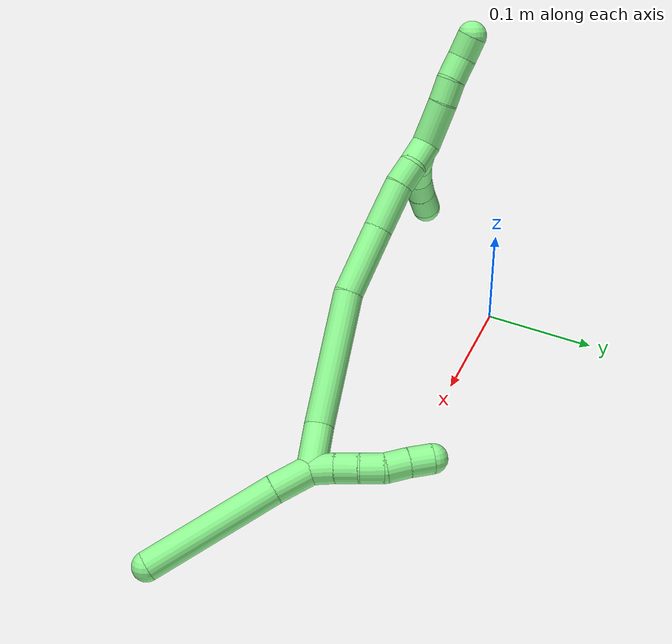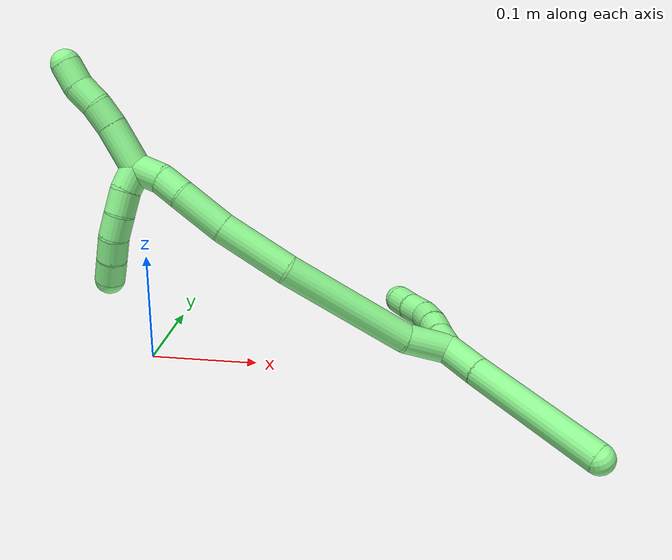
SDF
<sdf version="1.7">
 <world name="default">
  <model name="13">
   <static>0</static>
   <link name="13">
    <collision name="collision-cylinder-e_1_2_8">
     <pose>0.015057 -0.00344 -0.00684 2.67557 1.10037 2.40323</pose>
     <geometry><cylinder><radius>0.0125</radius><length>0.033785</length></cylinder></geometry>
     <surface>
      <friction><ode><mu>1.16</mu><mu2>1.16</mu2><slip1>0</slip1><slip2>0</slip2></ode></friction>
      <contact><ode><kp>1e+06</kp><kd>1</kd><max_vel>0</max_vel><min_depth>0.001</min_depth></ode></contact>
     </surface>
    </collision>
    <visual name="visual-cylinder-e_1_2_8">
     <pose>0.015057 -0.00344 -0.00684 2.67557 1.10037 2.40323</pose>
     <geometry><cylinder><radius>0.0125</radius><length>0.033785</length></cylinder></geometry>
     <material><ambient>0.564706 0.984314 0.572549 1</ambient></material>
    </visual>
    <collision name="collision-cylinder-e_2_8_6">
     <pose>0.08163 -0.015818 -0.039033 2.80267 1.08984 2.59134</pose>
     <geometry><cylinder><radius>0.0125</radius><length>0.116215</length></cylinder></geometry>
     <surface>
      <friction><ode><mu>1.16</mu><mu2>1.16</mu2><slip1>0</slip1><slip2>0</slip2></ode></friction>
      <contact><ode><kp>1e+06</kp><kd>1</kd><max_vel>0</max_vel><min_depth>0.001</min_depth></ode></contact>
     </surface>
    </collision>
    <visual name="visual-cylinder-e_2_8_6">
     <pose>0.08163 -0.015818 -0.039033 2.80267 1.08984 2.59134</pose>
     <geometry><cylinder><radius>0.0125</radius><length>0.116215</length></cylinder></geometry>
     <material><ambient>0.564706 0.984314 0.572549 1</ambient></material>
    </visual>
    <collision name="collision-cylinder-e_1_2_9">
     <pose>-0.008192 0.005632 0.001079 -1.38148 -0.960099 0.812834</pose>
     <geometry><cylinder><radius>0.0125</radius><length>0.02</length></cylinder></geometry>
     <surface>
      <friction><ode><mu>1.16</mu><mu2>1.16</mu2><slip1>0</slip1><slip2>0</slip2></ode></friction>
      <contact><ode><kp>1e+06</kp><kd>1</kd><max_vel>0</max_vel><min_depth>0.001</min_depth></ode></contact>
     </surface>
    </collision>
    <visual name="visual-cylinder-e_1_2_9">
     <pose>-0.008192 0.005632 0.001079 -1.38148 -0.960099 0.812834</pose>
     <geometry><cylinder><radius>0.0125</radius><length>0.02</length></cylinder></geometry>
     <material><ambient>0.564706 0.984314 0.572549 1</ambient></material>
    </visual>
    <collision name="collision-cylinder-e_2_9_10">
     <pose>-0.024211 0.017452 0.002837 -1.46152 -0.898796 0.816059</pose>
     <geometry><cylinder><radius>0.0125</radius><length>0.02</length></cylinder></geometry>
     <surface>
      <friction><ode><mu>1.16</mu><mu2>1.16</mu2><slip1>0</slip1><slip2>0</slip2></ode></friction>
      <contact><ode><kp>1e+06</kp><kd>1</kd><max_vel>0</max_vel><min_depth>0.001</min_depth></ode></contact>
     </surface>
    </collision>
    <visual name="visual-cylinder-e_2_9_10">
     <pose>-0.024211 0.017452 0.002837 -1.46152 -0.898796 0.816059</pose>
     <geometry><cylinder><radius>0.0125</radius><length>0.02</length></cylinder></geometry>
     <material><ambient>0.564706 0.984314 0.572549 1</ambient></material>
    </visual>
    <collision name="collision-cylinder-e_3_10_11">
     <pose>-0.040699 0.028633 0.003707 -1.5325 -1.0477 1.01484</pose>
     <geometry><cylinder><radius>0.0125</radius><length>0.02</length></cylinder></geometry>
     <surface>
      <friction><ode><mu>1.16</mu><mu2>1.16</mu2><slip1>0</slip1><slip2>0</slip2></ode></friction>
      <contact><ode><kp>1e+06</kp><kd>1</kd><max_vel>0</max_vel><min_depth>0.001</min_depth></ode></contact>
     </surface>
    </collision>
    <visual name="visual-cylinder-e_3_10_11">
     <pose>-0.040699 0.028633 0.003707 -1.5325 -1.0477 1.01484</pose>
     <geometry><cylinder><radius>0.0125</radius><length>0.02</length></cylinder></geometry>
     <material><ambient>0.564706 0.984314 0.572549 1</ambient></material>
    </visual>
    <collision name="collision-cylinder-e_4_11_12">
     <pose>-0.058937 0.036126 0.005334 -1.04981 -1.27819 0.812782</pose>
     <geometry><cylinder><radius>0.0125</radius><length>0.02</length></cylinder></geometry>
     <surface>
      <friction><ode><mu>1.16</mu><mu2>1.16</mu2><slip1>0</slip1><slip2>0</slip2></ode></friction>
      <contact><ode><kp>1e+06</kp><kd>1</kd><max_vel>0</max_vel><min_depth>0.001</min_depth></ode></contact>
     </surface>
    </collision>
    <visual name="visual-cylinder-e_4_11_12">
     <pose>-0.058937 0.036126 0.005334 -1.04981 -1.27819 0.812782</pose>
     <geometry><cylinder><radius>0.0125</radius><length>0.02</length></cylinder></geometry>
     <material><ambient>0.564706 0.984314 0.572549 1</ambient></material>
    </visual>
    <collision name="collision-cylinder-e_5_12_5">
     <pose>-0.077933 0.041836 0.007742 -1.27659 -1.22895 0.96452</pose>
     <geometry><cylinder><radius>0.0125</radius><length>0.02</length></cylinder></geometry>
     <surface>
      <friction><ode><mu>1.16</mu><mu2>1.16</mu2><slip1>0</slip1><slip2>0</slip2></ode></friction>
      <contact><ode><kp>1e+06</kp><kd>1</kd><max_vel>0</max_vel><min_depth>0.001</min_depth></ode></contact>
     </surface>
    </collision>
    <visual name="visual-cylinder-e_5_12_5">
     <pose>-0.077933 0.041836 0.007742 -1.27659 -1.22895 0.96452</pose>
     <geometry><cylinder><radius>0.0125</radius><length>0.02</length></cylinder></geometry>
     <material><ambient>0.564706 0.984314 0.572549 1</ambient></material>
    </visual>
    <collision name="collision-cylinder-e_1_2_13">
     <pose>-0.008904 -0.010566 0.013164 0.67637 -0.48539 -0.173704</pose>
     <geometry><cylinder><radius>0.0125</radius><length>0.038169</length></cylinder></geometry>
     <surface>
      <friction><ode><mu>1.16</mu><mu2>1.16</mu2><slip1>0</slip1><slip2>0</slip2></ode></friction>
      <contact><ode><kp>1e+06</kp><kd>1</kd><max_vel>0</max_vel><min_depth>0.001</min_depth></ode></contact>
     </surface>
    </collision>
    <visual name="visual-cylinder-e_1_2_13">
     <pose>-0.008904 -0.010566 0.013164 0.67637 -0.48539 -0.173704</pose>
     <geometry><cylinder><radius>0.0125</radius><length>0.038169</length></cylinder></geometry>
     <material><ambient>0.564706 0.984314 0.572549 1</ambient></material>
    </visual>
    <collision name="collision-cylinder-e_2_13_14">
     <pose>-0.041566 -0.040508 0.074495 0.382437 -0.429164 -0.084328</pose>
     <geometry><cylinder><radius>0.0125</radius><length>0.114192</length></cylinder></geometry>
     <surface>
      <friction><ode><mu>1.16</mu><mu2>1.16</mu2><slip1>0</slip1><slip2>0</slip2></ode></friction>
      <contact><ode><kp>1e+06</kp><kd>1</kd><max_vel>0</max_vel><min_depth>0.001</min_depth></ode></contact>
     </surface>
    </collision>
    <visual name="visual-cylinder-e_2_13_14">
     <pose>-0.041566 -0.040508 0.074495 0.382437 -0.429164 -0.084328</pose>
     <geometry><cylinder><radius>0.0125</radius><length>0.114192</length></cylinder></geometry>
     <material><ambient>0.564706 0.984314 0.572549 1</ambient></material>
    </visual>
    <collision name="collision-cylinder-e_3_14_15">
     <pose>-0.082796 -0.066062 0.146916 0.249487 -0.609438 -0.078836</pose>
     <geometry><cylinder><radius>0.0125</radius><length>0.061045</length></cylinder></geometry>
     <surface>
      <friction><ode><mu>1.16</mu><mu2>1.16</mu2><slip1>0</slip1><slip2>0</slip2></ode></friction>
      <contact><ode><kp>1e+06</kp><kd>1</kd><max_vel>0</max_vel><min_depth>0.001</min_depth></ode></contact>
     </surface>
    </collision>
    <visual name="visual-cylinder-e_3_14_15">
     <pose>-0.082796 -0.066062 0.146916 0.249487 -0.609438 -0.078836</pose>
     <geometry><cylinder><radius>0.0125</radius><length>0.061045</length></cylinder></geometry>
     <material><ambient>0.564706 0.984314 0.572549 1</ambient></material>
    </visual>
    <collision name="collision-cylinder-e_4_15_16">
     <pose>-0.111792 -0.074683 0.188698 0.138371 -0.5772 -0.041141</pose>
     <geometry><cylinder><radius>0.0125</radius><length>0.042241</length></cylinder></geometry>
     <surface>
      <friction><ode><mu>1.16</mu><mu2>1.16</mu2><slip1>0</slip1><slip2>0</slip2></ode></friction>
      <contact><ode><kp>1e+06</kp><kd>1</kd><max_vel>0</max_vel><min_depth>0.001</min_depth></ode></contact>
     </surface>
    </collision>
    <visual name="visual-cylinder-e_4_15_16">
     <pose>-0.111792 -0.074683 0.188698 0.138371 -0.5772 -0.041141</pose>
     <geometry><cylinder><radius>0.0125</radius><length>0.042241</length></cylinder></geometry>
     <material><ambient>0.564706 0.984314 0.572549 1</ambient></material>
    </visual>
    <collision name="collision-cylinder-e_5_16_17">
     <pose>-0.1303 -0.077528 0.214251 0.050252 -0.715534 -0.01879</pose>
     <geometry><cylinder><radius>0.0125</radius><length>0.021288</length></cylinder></geometry>
     <surface>
      <friction><ode><mu>1.16</mu><mu2>1.16</mu2><slip1>0</slip1><slip2>0</slip2></ode></friction>
      <contact><ode><kp>1e+06</kp><kd>1</kd><max_vel>0</max_vel><min_depth>0.001</min_depth></ode></contact>
     </surface>
    </collision>
    <visual name="visual-cylinder-e_5_16_17">
     <pose>-0.1303 -0.077528 0.214251 0.050252 -0.715534 -0.01879</pose>
     <geometry><cylinder><radius>0.0125</radius><length>0.021288</length></cylinder></geometry>
     <material><ambient>0.564706 0.984314 0.572549 1</ambient></material>
    </visual>
    <collision name="collision-cylinder-e_6_17_1">
     <pose>-0.145475 -0.081083 0.229754 0.398871 -0.790027 -0.168143</pose>
     <geometry><cylinder><radius>0.0125</radius><length>0.023065</length></cylinder></geometry>
     <surface>
      <friction><ode><mu>1.16</mu><mu2>1.16</mu2><slip1>0</slip1><slip2>0</slip2></ode></friction>
      <contact><ode><kp>1e+06</kp><kd>1</kd><max_vel>0</max_vel><min_depth>0.001</min_depth></ode></contact>
     </surface>
    </collision>
    <visual name="visual-cylinder-e_6_17_1">
     <pose>-0.145475 -0.081083 0.229754 0.398871 -0.790027 -0.168143</pose>
     <geometry><cylinder><radius>0.0125</radius><length>0.023065</length></cylinder></geometry>
     <material><ambient>0.564706 0.984314 0.572549 1</ambient></material>
    </visual>
    <collision name="collision-cylinder-e_1_1_18">
     <pose>-0.155967 -0.092332 0.231833 2.15907 -0.232047 -0.428979</pose>
     <geometry><cylinder><radius>0.0125</radius><length>0.02</length></cylinder></geometry>
     <surface>
      <friction><ode><mu>1.16</mu><mu2>1.16</mu2><slip1>0</slip1><slip2>0</slip2></ode></friction>
      <contact><ode><kp>1e+06</kp><kd>1</kd><max_vel>0</max_vel><min_depth>0.001</min_depth></ode></contact>
     </surface>
    </collision>
    <visual name="visual-cylinder-e_1_1_18">
     <pose>-0.155967 -0.092332 0.231833 2.15907 -0.232047 -0.428979</pose>
     <geometry><cylinder><radius>0.0125</radius><length>0.02</length></cylinder></geometry>
     <material><ambient>0.564706 0.984314 0.572549 1</ambient></material>
    </visual>
    <collision name="collision-cylinder-e_2_18_19">
     <pose>-0.160697 -0.107079 0.219371 2.38612 -0.245493 -0.602877</pose>
     <geometry><cylinder><radius>0.0125</radius><length>0.02</length></cylinder></geometry>
     <surface>
      <friction><ode><mu>1.16</mu><mu2>1.16</mu2><slip1>0</slip1><slip2>0</slip2></ode></friction>
      <contact><ode><kp>1e+06</kp><kd>1</kd><max_vel>0</max_vel><min_depth>0.001</min_depth></ode></contact>
     </surface>
    </collision>
    <visual name="visual-cylinder-e_2_18_19">
     <pose>-0.160697 -0.107079 0.219371 2.38612 -0.245493 -0.602877</pose>
     <geometry><cylinder><radius>0.0125</radius><length>0.02</length></cylinder></geometry>
     <material><ambient>0.564706 0.984314 0.572549 1</ambient></material>
    </visual>
    <collision name="collision-cylinder-e_3_19_20">
     <pose>-0.166681 -0.119541 0.204989 2.47061 -0.363283 -0.969649</pose>
     <geometry><cylinder><radius>0.0125</radius><length>0.02</length></cylinder></geometry>
     <surface>
      <friction><ode><mu>1.16</mu><mu2>1.16</mu2><slip1>0</slip1><slip2>0</slip2></ode></friction>
      <contact><ode><kp>1e+06</kp><kd>1</kd><max_vel>0</max_vel><min_depth>0.001</min_depth></ode></contact>
     </surface>
    </collision>
    <visual name="visual-cylinder-e_3_19_20">
     <pose>-0.166681 -0.119541 0.204989 2.47061 -0.363283 -0.969649</pose>
     <geometry><cylinder><radius>0.0125</radius><length>0.02</length></cylinder></geometry>
     <material><ambient>0.564706 0.984314 0.572549 1</ambient></material>
    </visual>
    <collision name="collision-cylinder-e_4_20_21">
     <pose>-0.174385 -0.129411 0.189526 2.6793 -0.428057 -1.49134</pose>
     <geometry><cylinder><radius>0.0125</radius><length>0.02</length></cylinder></geometry>
     <surface>
      <friction><ode><mu>1.16</mu><mu2>1.16</mu2><slip1>0</slip1><slip2>0</slip2></ode></friction>
      <contact><ode><kp>1e+06</kp><kd>1</kd><max_vel>0</max_vel><min_depth>0.001</min_depth></ode></contact>
     </surface>
    </collision>
    <visual name="visual-cylinder-e_4_20_21">
     <pose>-0.174385 -0.129411 0.189526 2.6793 -0.428057 -1.49134</pose>
     <geometry><cylinder><radius>0.0125</radius><length>0.02</length></cylinder></geometry>
     <material><ambient>0.564706 0.984314 0.572549 1</ambient></material>
    </visual>
    <collision name="collision-cylinder-e_5_21_4">
     <pose>-0.183454 -0.136952 0.173403 2.72987 -0.514179 -1.79913</pose>
     <geometry><cylinder><radius>0.0125</radius><length>0.02</length></cylinder></geometry>
     <surface>
      <friction><ode><mu>1.16</mu><mu2>1.16</mu2><slip1>0</slip1><slip2>0</slip2></ode></friction>
      <contact><ode><kp>1e+06</kp><kd>1</kd><max_vel>0</max_vel><min_depth>0.001</min_depth></ode></contact>
     </surface>
    </collision>
    <visual name="visual-cylinder-e_5_21_4">
     <pose>-0.183454 -0.136952 0.173403 2.72987 -0.514179 -1.79913</pose>
     <geometry><cylinder><radius>0.0125</radius><length>0.02</length></cylinder></geometry>
     <material><ambient>0.564706 0.984314 0.572549 1</ambient></material>
    </visual>
    <collision name="collision-cylinder-e_1_1_22">
     <pose>-0.159826 -0.08095 0.255171 -0.181197 -0.325722 0.029853</pose>
     <geometry><cylinder><radius>0.0125</radius><length>0.038495</length></cylinder></geometry>
     <surface>
      <friction><ode><mu>1.16</mu><mu2>1.16</mu2><slip1>0</slip1><slip2>0</slip2></ode></friction>
      <contact><ode><kp>1e+06</kp><kd>1</kd><max_vel>0</max_vel><min_depth>0.001</min_depth></ode></contact>
     </surface>
    </collision>
    <visual name="visual-cylinder-e_1_1_22">
     <pose>-0.159826 -0.08095 0.255171 -0.181197 -0.325722 0.029853</pose>
     <geometry><cylinder><radius>0.0125</radius><length>0.038495</length></cylinder></geometry>
     <material><ambient>0.564706 0.984314 0.572549 1</ambient></material>
    </visual>
    <collision name="collision-cylinder-e_2_22_23">
     <pose>-0.16946 -0.076971 0.28273 -0.071854 -0.345694 0.01255</pose>
     <geometry><cylinder><radius>0.0125</radius><length>0.020508</length></cylinder></geometry>
     <surface>
      <friction><ode><mu>1.16</mu><mu2>1.16</mu2><slip1>0</slip1><slip2>0</slip2></ode></friction>
      <contact><ode><kp>1e+06</kp><kd>1</kd><max_vel>0</max_vel><min_depth>0.001</min_depth></ode></contact>
     </surface>
    </collision>
    <visual name="visual-cylinder-e_2_22_23">
     <pose>-0.16946 -0.076971 0.28273 -0.071854 -0.345694 0.01255</pose>
     <geometry><cylinder><radius>0.0125</radius><length>0.020508</length></cylinder></geometry>
     <material><ambient>0.564706 0.984314 0.572549 1</ambient></material>
    </visual>
    <collision name="collision-cylinder-e_3_23_24">
     <pose>-0.178163 -0.076319 0.30135 0.004555 -0.526452 -0.001227</pose>
     <geometry><cylinder><radius>0.0125</radius><length>0.020813</length></cylinder></geometry>
     <surface>
      <friction><ode><mu>1.16</mu><mu2>1.16</mu2><slip1>0</slip1><slip2>0</slip2></ode></friction>
      <contact><ode><kp>1e+06</kp><kd>1</kd><max_vel>0</max_vel><min_depth>0.001</min_depth></ode></contact>
     </surface>
    </collision>
    <visual name="visual-cylinder-e_3_23_24">
     <pose>-0.178163 -0.076319 0.30135 0.004555 -0.526452 -0.001227</pose>
     <geometry><cylinder><radius>0.0125</radius><length>0.020813</length></cylinder></geometry>
     <material><ambient>0.564706 0.984314 0.572549 1</ambient></material>
    </visual>
    <collision name="collision-cylinder-e_4_24_3">
     <pose>-0.186916 -0.07433 0.319584 -0.21634 -0.356623 0.039138</pose>
     <geometry><cylinder><radius>0.0125</radius><length>0.020184</length></cylinder></geometry>
     <surface>
      <friction><ode><mu>1.16</mu><mu2>1.16</mu2><slip1>0</slip1><slip2>0</slip2></ode></friction>
      <contact><ode><kp>1e+06</kp><kd>1</kd><max_vel>0</max_vel><min_depth>0.001</min_depth></ode></contact>
     </surface>
    </collision>
    <visual name="visual-cylinder-e_4_24_3">
     <pose>-0.186916 -0.07433 0.319584 -0.21634 -0.356623 0.039138</pose>
     <geometry><cylinder><radius>0.0125</radius><length>0.020184</length></cylinder></geometry>
     <material><ambient>0.564706 0.984314 0.572549 1</ambient></material>
    </visual>
    <collision name="collision-sphere-3">
     <pose>-0.190439 -0.0723 0.32882 0 -0 0</pose>
     <geometry><sphere><radius>0.0125</radius></sphere></geometry>
     <surface>
      <friction><ode><mu>1.16</mu><mu2>1.16</mu2><slip1>0</slip1><slip2>0</slip2></ode></friction>
      <contact><ode><kp>1e+06</kp><kd>1</kd><max_vel>0</max_vel><min_depth>0.001</min_depth></ode></contact>
     </surface>
    </collision>
    <visual name="visual-sphere-3">
     <pose>-0.190439 -0.0723 0.32882 0 -0 0</pose>
     <geometry><sphere><radius>0.0125</radius></sphere></geometry>
     <material><ambient>0.564706 0.984314 0.572549 1</ambient></material>
    </visual>
    <collision name="collision-sphere-24">
     <pose>-0.183392 -0.07636 0.310347 0 -0 0</pose>
     <geometry><sphere><radius>0.0125</radius></sphere></geometry>
     <surface>
      <friction><ode><mu>1.16</mu><mu2>1.16</mu2><slip1>0</slip1><slip2>0</slip2></ode></friction>
      <contact><ode><kp>1e+06</kp><kd>1</kd><max_vel>0</max_vel><min_depth>0.001</min_depth></ode></contact>
     </surface>
    </collision>
    <visual name="visual-sphere-24">
     <pose>-0.183392 -0.07636 0.310347 0 -0 0</pose>
     <geometry><sphere><radius>0.0125</radius></sphere></geometry>
     <material><ambient>0.564706 0.984314 0.572549 1</ambient></material>
    </visual>
    <collision name="collision-sphere-23">
     <pose>-0.172934 -0.076278 0.292353 0 -0 0</pose>
     <geometry><sphere><radius>0.0125</radius></sphere></geometry>
     <surface>
      <friction><ode><mu>1.16</mu><mu2>1.16</mu2><slip1>0</slip1><slip2>0</slip2></ode></friction>
      <contact><ode><kp>1e+06</kp><kd>1</kd><max_vel>0</max_vel><min_depth>0.001</min_depth></ode></contact>
     </surface>
    </collision>
    <visual name="visual-sphere-23">
     <pose>-0.172934 -0.076278 0.292353 0 -0 0</pose>
     <geometry><sphere><radius>0.0125</radius></sphere></geometry>
     <material><ambient>0.564706 0.984314 0.572549 1</ambient></material>
    </visual>
    <collision name="collision-sphere-22">
     <pose>-0.165985 -0.077663 0.273108 0 -0 0</pose>
     <geometry><sphere><radius>0.0125</radius></sphere></geometry>
     <surface>
      <friction><ode><mu>1.16</mu><mu2>1.16</mu2><slip1>0</slip1><slip2>0</slip2></ode></friction>
      <contact><ode><kp>1e+06</kp><kd>1</kd><max_vel>0</max_vel><min_depth>0.001</min_depth></ode></contact>
     </surface>
    </collision>
    <visual name="visual-sphere-22">
     <pose>-0.165985 -0.077663 0.273108 0 -0 0</pose>
     <geometry><sphere><radius>0.0125</radius></sphere></geometry>
     <material><ambient>0.564706 0.984314 0.572549 1</ambient></material>
    </visual>
    <collision name="collision-sphere-4">
     <pose>-0.188373 -0.140437 0.165424 0 -0 0</pose>
     <geometry><sphere><radius>0.0125</radius></sphere></geometry>
     <surface>
      <friction><ode><mu>1.16</mu><mu2>1.16</mu2><slip1>0</slip1><slip2>0</slip2></ode></friction>
      <contact><ode><kp>1e+06</kp><kd>1</kd><max_vel>0</max_vel><min_depth>0.001</min_depth></ode></contact>
     </surface>
    </collision>
    <visual name="visual-sphere-4">
     <pose>-0.188373 -0.140437 0.165424 0 -0 0</pose>
     <geometry><sphere><radius>0.0125</radius></sphere></geometry>
     <material><ambient>0.564706 0.984314 0.572549 1</ambient></material>
    </visual>
    <collision name="collision-sphere-21">
     <pose>-0.178536 -0.133468 0.181383 0 -0 0</pose>
     <geometry><sphere><radius>0.0125</radius></sphere></geometry>
     <surface>
      <friction><ode><mu>1.16</mu><mu2>1.16</mu2><slip1>0</slip1><slip2>0</slip2></ode></friction>
      <contact><ode><kp>1e+06</kp><kd>1</kd><max_vel>0</max_vel><min_depth>0.001</min_depth></ode></contact>
     </surface>
    </collision>
    <visual name="visual-sphere-21">
     <pose>-0.178536 -0.133468 0.181383 0 -0 0</pose>
     <geometry><sphere><radius>0.0125</radius></sphere></geometry>
     <material><ambient>0.564706 0.984314 0.572549 1</ambient></material>
    </visual>
    <collision name="collision-sphere-20">
     <pose>-0.170234 -0.125353 0.197668 0 -0 0</pose>
     <geometry><sphere><radius>0.0125</radius></sphere></geometry>
     <surface>
      <friction><ode><mu>1.16</mu><mu2>1.16</mu2><slip1>0</slip1><slip2>0</slip2></ode></friction>
      <contact><ode><kp>1e+06</kp><kd>1</kd><max_vel>0</max_vel><min_depth>0.001</min_depth></ode></contact>
     </surface>
    </collision>
    <visual name="visual-sphere-20">
     <pose>-0.170234 -0.125353 0.197668 0 -0 0</pose>
     <geometry><sphere><radius>0.0125</radius></sphere></geometry>
     <material><ambient>0.564706 0.984314 0.572549 1</ambient></material>
    </visual>
    <collision name="collision-sphere-11">
     <pose>-0.049362 0.033625 0.003899 0 -0 0</pose>
     <geometry><sphere><radius>0.0125</radius></sphere></geometry>
     <surface>
      <friction><ode><mu>1.16</mu><mu2>1.16</mu2><slip1>0</slip1><slip2>0</slip2></ode></friction>
      <contact><ode><kp>1e+06</kp><kd>1</kd><max_vel>0</max_vel><min_depth>0.001</min_depth></ode></contact>
     </surface>
    </collision>
    <visual name="visual-sphere-11">
     <pose>-0.049362 0.033625 0.003899 0 -0 0</pose>
     <geometry><sphere><radius>0.0125</radius></sphere></geometry>
     <material><ambient>0.564706 0.984314 0.572549 1</ambient></material>
    </visual>
    <collision name="collision-sphere-10">
     <pose>-0.032037 0.023641 0.003516 0 -0 0</pose>
     <geometry><sphere><radius>0.0125</radius></sphere></geometry>
     <surface>
      <friction><ode><mu>1.16</mu><mu2>1.16</mu2><slip1>0</slip1><slip2>0</slip2></ode></friction>
      <contact><ode><kp>1e+06</kp><kd>1</kd><max_vel>0</max_vel><min_depth>0.001</min_depth></ode></contact>
     </surface>
    </collision>
    <visual name="visual-sphere-10">
     <pose>-0.032037 0.023641 0.003516 0 -0 0</pose>
     <geometry><sphere><radius>0.0125</radius></sphere></geometry>
     <material><ambient>0.564706 0.984314 0.572549 1</ambient></material>
    </visual>
    <collision name="collision-sphere-6">
     <pose>0.133146 -0.024756 -0.064386 0 -0 0</pose>
     <geometry><sphere><radius>0.0125</radius></sphere></geometry>
     <surface>
      <friction><ode><mu>1.16</mu><mu2>1.16</mu2><slip1>0</slip1><slip2>0</slip2></ode></friction>
      <contact><ode><kp>1e+06</kp><kd>1</kd><max_vel>0</max_vel><min_depth>0.001</min_depth></ode></contact>
     </surface>
    </collision>
    <visual name="visual-sphere-6">
     <pose>0.133146 -0.024756 -0.064386 0 -0 0</pose>
     <geometry><sphere><radius>0.0125</radius></sphere></geometry>
     <material><ambient>0.564706 0.984314 0.572549 1</ambient></material>
    </visual>
    <collision name="collision-sphere-9">
     <pose>-0.016385 0.011264 0.002158 0 -0 0</pose>
     <geometry><sphere><radius>0.0125</radius></sphere></geometry>
     <surface>
      <friction><ode><mu>1.16</mu><mu2>1.16</mu2><slip1>0</slip1><slip2>0</slip2></ode></friction>
      <contact><ode><kp>1e+06</kp><kd>1</kd><max_vel>0</max_vel><min_depth>0.001</min_depth></ode></contact>
     </surface>
    </collision>
    <visual name="visual-sphere-9">
     <pose>-0.016385 0.011264 0.002158 0 -0 0</pose>
     <geometry><sphere><radius>0.0125</radius></sphere></geometry>
     <material><ambient>0.564706 0.984314 0.572549 1</ambient></material>
    </visual>
    <collision name="collision-sphere-2">
     <geometry><sphere><radius>0.0125</radius></sphere></geometry>
     <surface>
      <friction><ode><mu>1.16</mu><mu2>1.16</mu2><slip1>0</slip1><slip2>0</slip2></ode></friction>
      <contact><ode><kp>1e+06</kp><kd>1</kd><max_vel>0</max_vel><min_depth>0.001</min_depth></ode></contact>
     </surface>
    </collision>
    <visual name="visual-sphere-2">
     <geometry><sphere><radius>0.0125</radius></sphere></geometry>
     <material><ambient>0.564706 0.984314 0.572549 1</ambient></material>
    </visual>
    <collision name="collision-sphere-19">
     <pose>-0.163127 -0.113729 0.21231 0 -0 0</pose>
     <geometry><sphere><radius>0.0125</radius></sphere></geometry>
     <surface>
      <friction><ode><mu>1.16</mu><mu2>1.16</mu2><slip1>0</slip1><slip2>0</slip2></ode></friction>
      <contact><ode><kp>1e+06</kp><kd>1</kd><max_vel>0</max_vel><min_depth>0.001</min_depth></ode></contact>
     </surface>
    </collision>
    <visual name="visual-sphere-19">
     <pose>-0.163127 -0.113729 0.21231 0 -0 0</pose>
     <geometry><sphere><radius>0.0125</radius></sphere></geometry>
     <material><ambient>0.564706 0.984314 0.572549 1</ambient></material>
    </visual>
    <collision name="collision-sphere-8">
     <pose>0.030115 -0.006881 -0.013681 0 -0 0</pose>
     <geometry><sphere><radius>0.0125</radius></sphere></geometry>
     <surface>
      <friction><ode><mu>1.16</mu><mu2>1.16</mu2><slip1>0</slip1><slip2>0</slip2></ode></friction>
      <contact><ode><kp>1e+06</kp><kd>1</kd><max_vel>0</max_vel><min_depth>0.001</min_depth></ode></contact>
     </surface>
    </collision>
    <visual name="visual-sphere-8">
     <pose>0.030115 -0.006881 -0.013681 0 -0 0</pose>
     <geometry><sphere><radius>0.0125</radius></sphere></geometry>
     <material><ambient>0.564706 0.984314 0.572549 1</ambient></material>
    </visual>
    <collision name="collision-sphere-12">
     <pose>-0.068512 0.038628 0.00677 0 -0 0</pose>
     <geometry><sphere><radius>0.0125</radius></sphere></geometry>
     <surface>
      <friction><ode><mu>1.16</mu><mu2>1.16</mu2><slip1>0</slip1><slip2>0</slip2></ode></friction>
      <contact><ode><kp>1e+06</kp><kd>1</kd><max_vel>0</max_vel><min_depth>0.001</min_depth></ode></contact>
     </surface>
    </collision>
    <visual name="visual-sphere-12">
     <pose>-0.068512 0.038628 0.00677 0 -0 0</pose>
     <geometry><sphere><radius>0.0125</radius></sphere></geometry>
     <material><ambient>0.564706 0.984314 0.572549 1</ambient></material>
    </visual>
    <collision name="collision-sphere-5">
     <pose>-0.087355 0.045045 0.008714 0 -0 0</pose>
     <geometry><sphere><radius>0.0125</radius></sphere></geometry>
     <surface>
      <friction><ode><mu>1.16</mu><mu2>1.16</mu2><slip1>0</slip1><slip2>0</slip2></ode></friction>
      <contact><ode><kp>1e+06</kp><kd>1</kd><max_vel>0</max_vel><min_depth>0.001</min_depth></ode></contact>
     </surface>
    </collision>
    <visual name="visual-sphere-5">
     <pose>-0.087355 0.045045 0.008714 0 -0 0</pose>
     <geometry><sphere><radius>0.0125</radius></sphere></geometry>
     <material><ambient>0.564706 0.984314 0.572549 1</ambient></material>
    </visual>
    <collision name="collision-sphere-13">
     <pose>-0.017808 -0.021133 0.026328 0 -0 0</pose>
     <geometry><sphere><radius>0.0125</radius></sphere></geometry>
     <surface>
      <friction><ode><mu>1.16</mu><mu2>1.16</mu2><slip1>0</slip1><slip2>0</slip2></ode></friction>
      <contact><ode><kp>1e+06</kp><kd>1</kd><max_vel>0</max_vel><min_depth>0.001</min_depth></ode></contact>
     </surface>
    </collision>
    <visual name="visual-sphere-13">
     <pose>-0.017808 -0.021133 0.026328 0 -0 0</pose>
     <geometry><sphere><radius>0.0125</radius></sphere></geometry>
     <material><ambient>0.564706 0.984314 0.572549 1</ambient></material>
    </visual>
    <collision name="collision-sphere-14">
     <pose>-0.065324 -0.059883 0.122663 0 -0 0</pose>
     <geometry><sphere><radius>0.0125</radius></sphere></geometry>
     <surface>
      <friction><ode><mu>1.16</mu><mu2>1.16</mu2><slip1>0</slip1><slip2>0</slip2></ode></friction>
      <contact><ode><kp>1e+06</kp><kd>1</kd><max_vel>0</max_vel><min_depth>0.001</min_depth></ode></contact>
     </surface>
    </collision>
    <visual name="visual-sphere-14">
     <pose>-0.065324 -0.059883 0.122663 0 -0 0</pose>
     <geometry><sphere><radius>0.0125</radius></sphere></geometry>
     <material><ambient>0.564706 0.984314 0.572549 1</ambient></material>
    </visual>
    <collision name="collision-sphere-15">
     <pose>-0.100267 -0.072242 0.171168 0 -0 0</pose>
     <geometry><sphere><radius>0.0125</radius></sphere></geometry>
     <surface>
      <friction><ode><mu>1.16</mu><mu2>1.16</mu2><slip1>0</slip1><slip2>0</slip2></ode></friction>
      <contact><ode><kp>1e+06</kp><kd>1</kd><max_vel>0</max_vel><min_depth>0.001</min_depth></ode></contact>
     </surface>
    </collision>
    <visual name="visual-sphere-15">
     <pose>-0.100267 -0.072242 0.171168 0 -0 0</pose>
     <geometry><sphere><radius>0.0125</radius></sphere></geometry>
     <material><ambient>0.564706 0.984314 0.572549 1</ambient></material>
    </visual>
    <collision name="collision-sphere-16">
     <pose>-0.123317 -0.077124 0.206228 0 -0 0</pose>
     <geometry><sphere><radius>0.0125</radius></sphere></geometry>
     <surface>
      <friction><ode><mu>1.16</mu><mu2>1.16</mu2><slip1>0</slip1><slip2>0</slip2></ode></friction>
      <contact><ode><kp>1e+06</kp><kd>1</kd><max_vel>0</max_vel><min_depth>0.001</min_depth></ode></contact>
     </surface>
    </collision>
    <visual name="visual-sphere-16">
     <pose>-0.123317 -0.077124 0.206228 0 -0 0</pose>
     <geometry><sphere><radius>0.0125</radius></sphere></geometry>
     <material><ambient>0.564706 0.984314 0.572549 1</ambient></material>
    </visual>
    <collision name="collision-sphere-17">
     <pose>-0.137283 -0.077931 0.222275 0 -0 0</pose>
     <geometry><sphere><radius>0.0125</radius></sphere></geometry>
     <surface>
      <friction><ode><mu>1.16</mu><mu2>1.16</mu2><slip1>0</slip1><slip2>0</slip2></ode></friction>
      <contact><ode><kp>1e+06</kp><kd>1</kd><max_vel>0</max_vel><min_depth>0.001</min_depth></ode></contact>
     </surface>
    </collision>
    <visual name="visual-sphere-17">
     <pose>-0.137283 -0.077931 0.222275 0 -0 0</pose>
     <geometry><sphere><radius>0.0125</radius></sphere></geometry>
     <material><ambient>0.564706 0.984314 0.572549 1</ambient></material>
    </visual>
    <collision name="collision-sphere-1">
     <pose>-0.153667 -0.084236 0.237234 0 -0 0</pose>
     <geometry><sphere><radius>0.0125</radius></sphere></geometry>
     <surface>
      <friction><ode><mu>1.16</mu><mu2>1.16</mu2><slip1>0</slip1><slip2>0</slip2></ode></friction>
      <contact><ode><kp>1e+06</kp><kd>1</kd><max_vel>0</max_vel><min_depth>0.001</min_depth></ode></contact>
     </surface>
    </collision>
    <visual name="visual-sphere-1">
     <pose>-0.153667 -0.084236 0.237234 0 -0 0</pose>
     <geometry><sphere><radius>0.0125</radius></sphere></geometry>
     <material><ambient>0.564706 0.984314 0.572549 1</ambient></material>
    </visual>
    <collision name="collision-sphere-18">
     <pose>-0.158267 -0.100428 0.226433 0 -0 0</pose>
     <geometry><sphere><radius>0.0125</radius></sphere></geometry>
     <surface>
      <friction><ode><mu>1.16</mu><mu2>1.16</mu2><slip1>0</slip1><slip2>0</slip2></ode></friction>
      <contact><ode><kp>1e+06</kp><kd>1</kd><max_vel>0</max_vel><min_depth>0.001</min_depth></ode></contact>
     </surface>
    </collision>
    <visual name="visual-sphere-18">
     <pose>-0.158267 -0.100428 0.226433 0 -0 0</pose>
     <geometry><sphere><radius>0.0125</radius></sphere></geometry>
     <material><ambient>0.564706 0.984314 0.572549 1</ambient></material>
    </visual>
    <inertial>
     <pose>-0.065504 -0.046117 0.106908 0 -0 0</pose>
     <mass>0.75</mass>
     <inertia>
      <ixx>0.000114</ixx>
      <ixy>0</ixy>
      <ixz>0</ixz>
      <iyy>0.000318</iyy>
      <iyz>0</iyz>
      <izz>5.4e-05</izz>
     </inertia>
    </inertial>
   </link>
   <pose>0.274696 -0.053559 0.051441 0.400844 -0.218736 -0.694981</pose>
  </model>
 </world>
</sdf>
